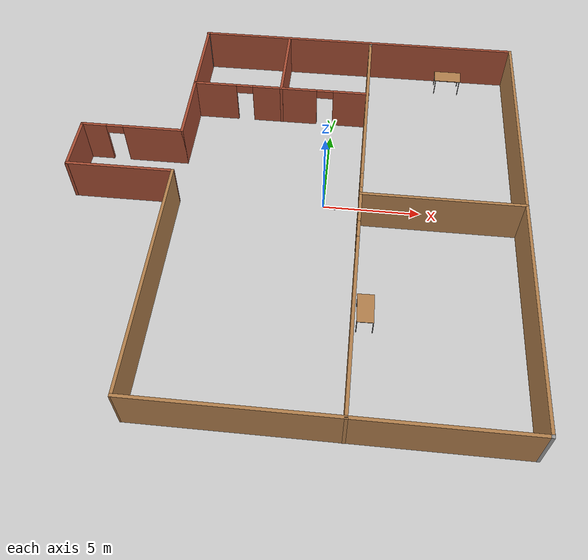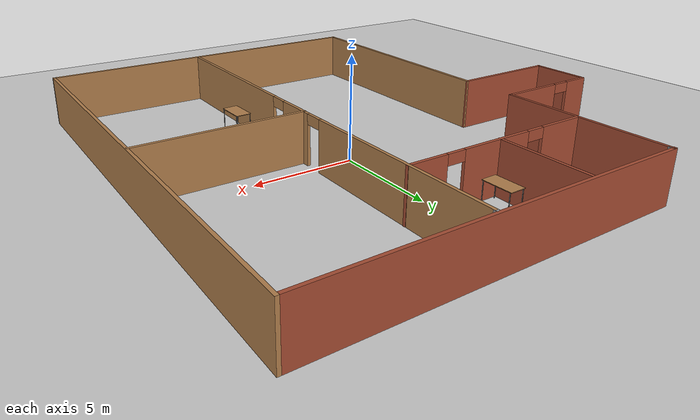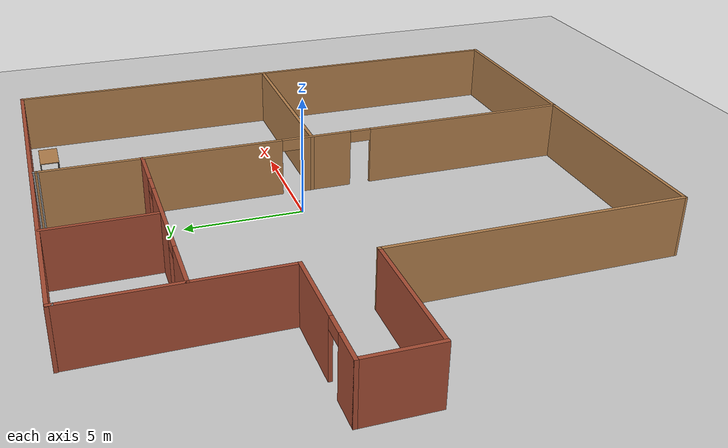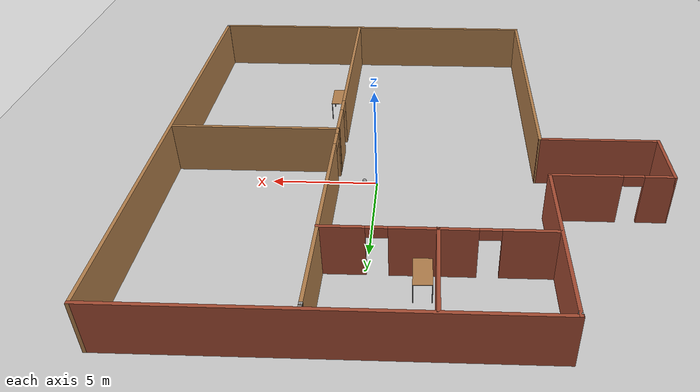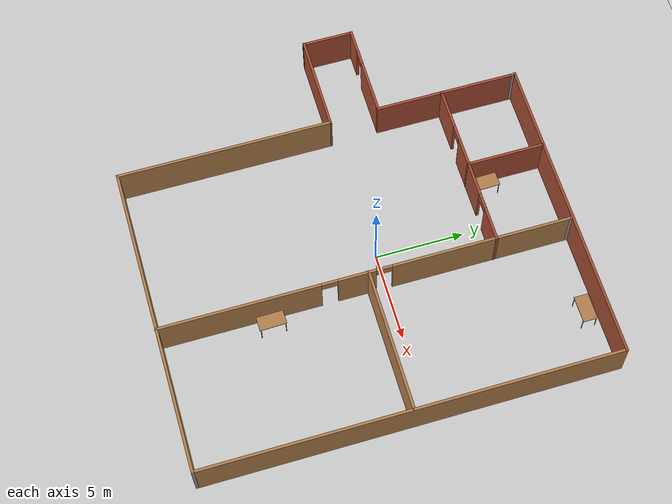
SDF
<sdf version="1.6">
 <world name="default">
  <model name="ground_plane">
   <static>1</static>
   <link name="link">
    <collision name="collision">
     <geometry><plane><normal>0 0 1</normal><size>100 100</size></plane></geometry>
     <surface><friction><ode><mu>100</mu><mu2>50</mu2></ode></friction></surface>
    </collision>
    <visual name="visual">
     <cast_shadows>0</cast_shadows>
     <geometry><plane><normal>0 0 1</normal><size>100 100</size></plane></geometry>
     <material>
      <script><uri>file://media/materials/scripts/gazebo.material</uri><name>Gazebo/Grey</name></script>
     </material>
    </visual>
   </link>
  </model>
  <model name="Building">
   <pose>-1.57707 -0.99469 0 0 -0 0</pose>
   <link name="Wall_0">
    <pose>-8.79073 3.4119 0 0 -0 0</pose>
    <visual name="Wall_0_Visual_0">
     <pose>-2.06075 0 1.25 0 -0 0</pose>
     <geometry><box><size>1.3785 0.15 2.5</size></box></geometry>
     <material>
      <script><uri>file://media/materials/scripts/gazebo.material</uri><name>Gazebo/Bricks</name></script>
      <ambient>1 1 1 1</ambient>
     </material>
     <meta><layer>0</layer></meta>
    </visual>
    <collision name="Wall_0_Collision_0">
     <geometry><box><size>1.3785 0.15 2.5</size></box></geometry>
     <pose>-2.06075 0 1.25 0 -0 0</pose>
    </collision>
    <visual name="Wall_0_Visual_1">
     <pose>1.13925 0 1.25 0 -0 0</pose>
     <geometry><box><size>3.2215 0.15 2.5</size></box></geometry>
     <material>
      <script><uri>file://media/materials/scripts/gazebo.material</uri><name>Gazebo/Bricks</name></script>
      <ambient>1 1 1 1</ambient>
     </material>
     <meta><layer>0</layer></meta>
    </visual>
    <collision name="Wall_0_Collision_1">
     <geometry><box><size>3.2215 0.15 2.5</size></box></geometry>
     <pose>1.13925 0 1.25 0 -0 0</pose>
    </collision>
    <visual name="Wall_0_Visual_2">
     <pose>-0.921499 0 2.25 0 -0 0</pose>
     <geometry><box><size>0.9 0.15 0.5</size></box></geometry>
     <material>
      <script><uri>file://media/materials/scripts/gazebo.material</uri><name>Gazebo/Bricks</name></script>
      <ambient>1 1 1 1</ambient>
     </material>
     <meta><layer>0</layer></meta>
    </visual>
    <collision name="Wall_0_Collision_2">
     <geometry><box><size>0.9 0.15 0.5</size></box></geometry>
     <pose>-0.921499 0 2.25 0 -0 0</pose>
    </collision>
   </link>
   <link name="Wall_1">
    <collision name="Wall_1_Collision">
     <geometry><box><size>8.232 0.15 2.5</size></box></geometry>
     <pose>0 0 1.25 0 -0 0</pose>
    </collision>
    <visual name="Wall_1_Visual">
     <pose>0 0 1.25 0 -0 0</pose>
     <geometry><box><size>8.232 0.15 2.5</size></box></geometry>
     <material>
      <script><uri>file://media/materials/scripts/gazebo.material</uri><name>Gazebo/Bricks</name></script>
      <ambient>1 1 1 1</ambient>
     </material>
     <meta><layer>0</layer></meta>
    </visual>
    <pose>-6.11573 7.4529 0 0 -0 1.5708</pose>
   </link>
   <link name="Wall_10">
    <collision name="Wall_10_Collision">
     <geometry><box><size>23 0.15 2.5</size></box></geometry>
     <pose>0 0 1.25 0 -0 0</pose>
    </collision>
    <visual name="Wall_10_Visual">
     <pose>0 0 1.25 0 -0 0</pose>
     <geometry><box><size>23 0.15 2.5</size></box></geometry>
     <material>
      <script><uri>file://media/materials/scripts/gazebo.material</uri><name>Gazebo/Wood</name></script>
      <ambient>0.996078 0.47451 0.0196078 1</ambient>
     </material>
     <meta><layer>0</layer></meta>
    </visual>
    <pose>11.4655 0.080949 0 0 0 -1.57078</pose>
   </link>
   <link name="Wall_14">
    <collision name="Wall_14_Collision">
     <geometry><box><size>17.629 0.15 2.5</size></box></geometry>
     <pose>0 0 1.25 0 -0 0</pose>
    </collision>
    <visual name="Wall_14_Visual">
     <pose>0 0 1.25 0 -0 0</pose>
     <geometry><box><size>17.629 0.15 2.5</size></box></geometry>
     <material>
      <script><uri>file://media/materials/scripts/gazebo.material</uri><name>Gazebo/Wood</name></script>
      <ambient>0.996078 0.47451 0.0196078 1</ambient>
     </material>
     <meta><layer>0</layer></meta>
    </visual>
    <pose>2.72077 -11.4971 0 0 -0 0</pose>
   </link>
   <link name="Wall_15">
    <collision name="Wall_15_Collision">
     <geometry><box><size>0.15 0.15 2.5</size></box></geometry>
     <pose>0 0 1.25 0 -0 0</pose>
    </collision>
    <visual name="Wall_15_Visual">
     <pose>0 0 1.25 0 -0 0</pose>
     <geometry><box><size>0.15 0.15 2.5</size></box></geometry>
     <material>
      <script><uri>file://media/materials/scripts/gazebo.material</uri><name>Gazebo/Grey</name></script>
      <ambient>1 1 1 1</ambient>
     </material>
     <meta><layer>0</layer></meta>
    </visual>
    <pose>11.4603 -11.4971 0 0 -0 0</pose>
   </link>
   <link name="Wall_18">
    <collision name="Wall_18_Collision">
     <geometry><box><size>12.25 0.15 2.5</size></box></geometry>
     <pose>0 0 1.25 0 -0 0</pose>
    </collision>
    <visual name="Wall_18_Visual">
     <pose>0 0 1.25 0 -0 0</pose>
     <geometry><box><size>12.25 0.15 2.5</size></box></geometry>
     <material>
      <script><uri>file://media/materials/scripts/gazebo.material</uri><name>Gazebo/Wood</name></script>
      <ambient>0.996078 0.47451 0.0196078 1</ambient>
     </material>
     <meta><layer>0</layer></meta>
    </visual>
    <pose>-6.02333 -5.4471 0 0 -0 1.57156</pose>
   </link>
   <link name="Wall_21">
    <collision name="Wall_21_Collision">
     <geometry><box><size>2.968 0.15 2.5</size></box></geometry>
     <pose>0 0 1.25 0 -0 0</pose>
    </collision>
    <visual name="Wall_21_Visual">
     <pose>0 0 1.25 0 -0 0</pose>
     <geometry><box><size>2.968 0.15 2.5</size></box></geometry>
     <material>
      <script><uri>file://media/materials/scripts/gazebo.material</uri><name>Gazebo/Bricks</name></script>
      <ambient>1 1 1 1</ambient>
     </material>
     <meta><layer>0</layer></meta>
    </visual>
    <pose>-11.4657 2.0029 0 0 0 -1.5708</pose>
   </link>
   <link name="Wall_25">
    <collision name="Wall_25_Collision">
     <geometry><box><size>5.5618 0.15 2.5</size></box></geometry>
     <pose>0 0 1.25 0 -0 0</pose>
    </collision>
    <visual name="Wall_25_Visual">
     <pose>0 0 1.25 0 -0 0</pose>
     <geometry><box><size>5.5618 0.15 2.5</size></box></geometry>
     <material>
      <script><uri>file://media/materials/scripts/gazebo.material</uri><name>Gazebo/Bricks</name></script>
      <ambient>1 1 1 1</ambient>
     </material>
     <meta><layer>0</layer></meta>
    </visual>
    <pose>-8.73383 0.602898 0 0 -0 3.14159</pose>
   </link>
   <link name="Wall_28">
    <pose>3.44626 -0.112102 0 0 -0 1.5708</pose>
    <visual name="Wall_28_Visual_0">
     <pose>-6.97297 0 1.25 0 -0 0</pose>
     <geometry><box><size>8.99175 0.15 2.5</size></box></geometry>
     <material>
      <script><uri>file://media/materials/scripts/gazebo.material</uri><name>Gazebo/Wood</name></script>
      <ambient>0.996078 0.47451 0.0196078 1</ambient>
     </material>
     <meta><layer>0</layer></meta>
    </visual>
    <collision name="Wall_28_Collision_0">
     <geometry><box><size>8.99175 0.15 2.5</size></box></geometry>
     <pose>-6.97297 0 1.25 0 -0 0</pose>
    </collision>
    <visual name="Wall_28_Visual_1">
     <pose>-0.516704 0 1.25 0 -0 0</pose>
     <geometry><box><size>2.12078 0.15 2.5</size></box></geometry>
     <material>
      <script><uri>file://media/materials/scripts/gazebo.material</uri><name>Gazebo/Wood</name></script>
      <ambient>0.996078 0.47451 0.0196078 1</ambient>
     </material>
     <meta><layer>0</layer></meta>
    </visual>
    <collision name="Wall_28_Collision_1">
     <geometry><box><size>2.12078 0.15 2.5</size></box></geometry>
     <pose>-0.516704 0 1.25 0 -0 0</pose>
    </collision>
    <visual name="Wall_28_Visual_2">
     <pose>6.45627 0 1.25 0 -0 0</pose>
     <geometry><box><size>10.0252 0.15 2.5</size></box></geometry>
     <material>
      <script><uri>file://media/materials/scripts/gazebo.material</uri><name>Gazebo/Wood</name></script>
      <ambient>0.996078 0.47451 0.0196078 1</ambient>
     </material>
     <meta><layer>0</layer></meta>
    </visual>
    <collision name="Wall_28_Collision_2">
     <geometry><box><size>10.0252 0.15 2.5</size></box></geometry>
     <pose>6.45627 0 1.25 0 -0 0</pose>
    </collision>
    <visual name="Wall_28_Visual_3">
     <pose>-2.02709 0 2.25 0 -0 0</pose>
     <geometry><box><size>0.9 0.15 0.5</size></box></geometry>
     <material>
      <script><uri>file://media/materials/scripts/gazebo.material</uri><name>Gazebo/Wood</name></script>
      <ambient>0.996078 0.47451 0.0196078 1</ambient>
     </material>
     <meta><layer>0</layer></meta>
    </visual>
    <collision name="Wall_28_Collision_3">
     <geometry><box><size>0.9 0.15 0.5</size></box></geometry>
     <pose>-2.02709 0 2.25 0 -0 0</pose>
    </collision>
    <visual name="Wall_28_Visual_4">
     <pose>0.993685 0 2.25 0 -0 0</pose>
     <geometry><box><size>0.9 0.15 0.5</size></box></geometry>
     <material>
      <script><uri>file://media/materials/scripts/gazebo.material</uri><name>Gazebo/Wood</name></script>
      <ambient>0.996078 0.47451 0.0196078 1</ambient>
     </material>
     <meta><layer>0</layer></meta>
    </visual>
    <collision name="Wall_28_Collision_4">
     <geometry><box><size>0.9 0.15 0.5</size></box></geometry>
     <pose>0.993685 0 2.25 0 -0 0</pose>
    </collision>
   </link>
   <link name="Wall_30">
    <collision name="Wall_30_Collision">
     <geometry><box><size>8.172 0.15 2.5</size></box></geometry>
     <pose>0 0 1.25 0 -0 0</pose>
    </collision>
    <visual name="Wall_30_Visual">
     <pose>0 0 1.25 0 -0 0</pose>
     <geometry><box><size>8.172 0.15 2.5</size></box></geometry>
     <material>
      <script><uri>file://media/materials/scripts/gazebo.material</uri><name>Gazebo/Wood</name></script>
      <ambient>0.996078 0.47451 0.0196078 1</ambient>
     </material>
     <meta><layer>0</layer></meta>
    </visual>
    <pose>7.44926 0.031898 0 0 -0 0</pose>
   </link>
   <link name="Wall_32">
    <pose>-1.32323 7.1579 0 0 -0 0</pose>
    <visual name="Wall_32_Visual_0">
     <pose>-3.66568 0 1.25 0 -0 0</pose>
     <geometry><box><size>2.38565 0.15 2.5</size></box></geometry>
     <material>
      <script><uri>file://media/materials/scripts/gazebo.material</uri><name>Gazebo/Bricks</name></script>
      <ambient>1 1 1 1</ambient>
     </material>
     <meta><layer>0</layer></meta>
    </visual>
    <collision name="Wall_32_Collision_0">
     <geometry><box><size>2.38565 0.15 2.5</size></box></geometry>
     <pose>-3.66568 0 1.25 0 -0 0</pose>
    </collision>
    <visual name="Wall_32_Visual_1">
     <pose>0.210013 0 1.25 0 -0 0</pose>
     <geometry><box><size>3.56573 0.15 2.5</size></box></geometry>
     <material>
      <script><uri>file://media/materials/scripts/gazebo.material</uri><name>Gazebo/Bricks</name></script>
      <ambient>1 1 1 1</ambient>
     </material>
     <meta><layer>0</layer></meta>
    </visual>
    <collision name="Wall_32_Collision_1">
     <geometry><box><size>3.56573 0.15 2.5</size></box></geometry>
     <pose>0.210013 0 1.25 0 -0 0</pose>
    </collision>
    <visual name="Wall_32_Visual_2">
     <pose>3.87569 0 1.25 0 -0 0</pose>
     <geometry><box><size>1.96562 0.15 2.5</size></box></geometry>
     <material>
      <script><uri>file://media/materials/scripts/gazebo.material</uri><name>Gazebo/Bricks</name></script>
      <ambient>1 1 1 1</ambient>
     </material>
     <meta><layer>0</layer></meta>
    </visual>
    <collision name="Wall_32_Collision_2">
     <geometry><box><size>1.96562 0.15 2.5</size></box></geometry>
     <pose>3.87569 0 1.25 0 -0 0</pose>
    </collision>
    <visual name="Wall_32_Visual_3">
     <pose>-2.02285 0 2.25 0 -0 0</pose>
     <geometry><box><size>0.9 0.15 0.5</size></box></geometry>
     <material>
      <script><uri>file://media/materials/scripts/gazebo.material</uri><name>Gazebo/Bricks</name></script>
      <ambient>1 1 1 1</ambient>
     </material>
     <meta><layer>0</layer></meta>
    </visual>
    <collision name="Wall_32_Collision_3">
     <geometry><box><size>0.9 0.15 0.5</size></box></geometry>
     <pose>-2.02285 0 2.25 0 -0 0</pose>
    </collision>
    <visual name="Wall_32_Visual_4">
     <pose>2.44288 0 2.25 0 -0 0</pose>
     <geometry><box><size>0.9 0.15 0.5</size></box></geometry>
     <material>
      <script><uri>file://media/materials/scripts/gazebo.material</uri><name>Gazebo/Bricks</name></script>
      <ambient>1 1 1 1</ambient>
     </material>
     <meta><layer>0</layer></meta>
    </visual>
    <collision name="Wall_32_Collision_4">
     <geometry><box><size>0.9 0.15 0.5</size></box></geometry>
     <pose>2.44288 0 2.25 0 -0 0</pose>
    </collision>
   </link>
   <link name="Wall_34">
    <collision name="Wall_34_Collision">
     <geometry><box><size>4.45 0.15 2.5</size></box></geometry>
     <pose>0 0 1.25 0 -0 0</pose>
    </collision>
    <visual name="Wall_34_Visual">
     <pose>0 0 1.25 0 -0 0</pose>
     <geometry><box><size>4.45 0.15 2.5</size></box></geometry>
     <material>
      <script><uri>file://media/materials/scripts/gazebo.material</uri><name>Gazebo/Bricks</name></script>
      <ambient>1 1 1 1</ambient>
     </material>
     <meta><layer>0</layer></meta>
    </visual>
    <pose>-1.30273 9.2939 0 0 0 -1.5708</pose>
   </link>
   <link name="Wall_38">
    <collision name="Wall_38_Collision">
     <geometry><box><size>0.25 0.15 2.5</size></box></geometry>
     <pose>0 0 1.25 0 -0 0</pose>
    </collision>
    <visual name="Wall_38_Visual">
     <pose>0 0 1.25 0 -0 0</pose>
     <geometry><box><size>0.25 0.15 2.5</size></box></geometry>
     <material>
      <script><uri>file://media/materials/scripts/gazebo.material</uri><name>Gazebo/Grey</name></script>
      <ambient>1 1 1 1</ambient>
     </material>
     <meta><layer>0</layer></meta>
    </visual>
    <pose>3.44649 11.3317 0 0 -0 1.56636</pose>
   </link>
   <link name="Wall_4">
    <collision name="Wall_4_Collision">
     <geometry><box><size>0.15 0.15 2.5</size></box></geometry>
     <pose>0 0 1.25 0 -0 0</pose>
    </collision>
    <visual name="Wall_4_Visual">
     <pose>0 0 1.25 0 -0 0</pose>
     <geometry><box><size>0.15 0.15 2.5</size></box></geometry>
     <material>
      <script><uri>file://media/materials/scripts/gazebo.material</uri><name>Gazebo/Grey</name></script>
      <ambient>1 1 1 1</ambient>
     </material>
     <meta><layer>0</layer></meta>
    </visual>
    <pose>-6.11559 11.362 0 0 -0 0</pose>
   </link>
   <link name="Wall_9">
    <collision name="Wall_9_Collision">
     <geometry><box><size>17.755 0.15 2.5</size></box></geometry>
     <pose>0 0 1.25 0 -0 0</pose>
    </collision>
    <visual name="Wall_9_Visual">
     <pose>0 0 1.25 0 -0 0</pose>
     <geometry><box><size>17.755 0.15 2.5</size></box></geometry>
     <material>
      <script><uri>file://media/materials/scripts/gazebo.material</uri><name>Gazebo/Bricks</name></script>
      <ambient>1 1 1 1</ambient>
     </material>
     <meta><layer>0</layer></meta>
    </visual>
    <pose>2.66276 11.5059 0 0 -0 0</pose>
   </link>
   <static>1</static>
  </model>
  <model name="table_0">
   <static>1</static>
   <link name="link">
    <collision name="surface">
     <pose>0 0 1 0 -0 0</pose>
     <geometry><box><size>1.5 0.8 0.03</size></box></geometry>
     <surface><friction><ode><mu>0.6</mu><mu2>0.6</mu2></ode></friction></surface>
    </collision>
    <visual name="visual1">
     <pose>0 0 1 0 -0 0</pose>
     <geometry><box><size>1.5 0.8 0.03</size></box></geometry>
     <material>
      <script><uri>file://media/materials/scripts/gazebo.material</uri><name>Gazebo/Wood</name></script>
     </material>
    </visual>
    <collision name="front_left_leg">
     <pose>0.68 0.38 0.5 0 -0 0</pose>
     <geometry><cylinder><radius>0.02</radius><length>1</length></cylinder></geometry>
    </collision>
    <visual name="front_left_leg">
     <pose>0.68 0.38 0.5 0 -0 0</pose>
     <geometry><cylinder><radius>0.02</radius><length>1</length></cylinder></geometry>
     <material>
      <script><uri>file://media/materials/scripts/gazebo.material</uri><name>Gazebo/Grey</name></script>
     </material>
    </visual>
    <collision name="front_right_leg">
     <pose>0.68 -0.38 0.5 0 -0 0</pose>
     <geometry><cylinder><radius>0.02</radius><length>1</length></cylinder></geometry>
    </collision>
    <visual name="front_right_leg">
     <pose>0.68 -0.38 0.5 0 -0 0</pose>
     <geometry><cylinder><radius>0.02</radius><length>1</length></cylinder></geometry>
     <material>
      <script><uri>file://media/materials/scripts/gazebo.material</uri><name>Gazebo/Grey</name></script>
     </material>
    </visual>
    <collision name="back_right_leg">
     <pose>-0.68 -0.38 0.5 0 -0 0</pose>
     <geometry><cylinder><radius>0.02</radius><length>1</length></cylinder></geometry>
    </collision>
    <visual name="back_right_leg">
     <pose>-0.68 -0.38 0.5 0 -0 0</pose>
     <geometry><cylinder><radius>0.02</radius><length>1</length></cylinder></geometry>
     <material>
      <script><uri>file://media/materials/scripts/gazebo.material</uri><name>Gazebo/Grey</name></script>
     </material>
    </visual>
    <collision name="back_left_leg">
     <pose>-0.68 0.38 0.5 0 -0 0</pose>
     <geometry><cylinder><radius>0.02</radius><length>1</length></cylinder></geometry>
    </collision>
    <visual name="back_left_leg">
     <pose>-0.68 0.38 0.5 0 -0 0</pose>
     <geometry><cylinder><radius>0.02</radius><length>1</length></cylinder></geometry>
     <material>
      <script><uri>file://media/materials/scripts/gazebo.material</uri><name>Gazebo/Grey</name></script>
     </material>
    </visual>
   </link>
   <pose>6.50755 9.71927 0 0 -0 0</pose>
  </model>
  <model name="table_1">
   <static>1</static>
   <link name="link">
    <collision name="surface">
     <pose>0 0 1 0 -0 0</pose>
     <geometry><box><size>1.5 0.8 0.03</size></box></geometry>
     <surface><friction><ode><mu>0.6</mu><mu2>0.6</mu2></ode></friction></surface>
    </collision>
    <visual name="visual1">
     <pose>0 0 1 0 -0 0</pose>
     <geometry><box><size>1.5 0.8 0.03</size></box></geometry>
     <material>
      <script><uri>file://media/materials/scripts/gazebo.material</uri><name>Gazebo/Wood</name></script>
     </material>
    </visual>
    <collision name="front_left_leg">
     <pose>0.68 0.38 0.5 0 -0 0</pose>
     <geometry><cylinder><radius>0.02</radius><length>1</length></cylinder></geometry>
    </collision>
    <visual name="front_left_leg">
     <pose>0.68 0.38 0.5 0 -0 0</pose>
     <geometry><cylinder><radius>0.02</radius><length>1</length></cylinder></geometry>
     <material>
      <script><uri>file://media/materials/scripts/gazebo.material</uri><name>Gazebo/Grey</name></script>
     </material>
    </visual>
    <collision name="front_right_leg">
     <pose>0.68 -0.38 0.5 0 -0 0</pose>
     <geometry><cylinder><radius>0.02</radius><length>1</length></cylinder></geometry>
    </collision>
    <visual name="front_right_leg">
     <pose>0.68 -0.38 0.5 0 -0 0</pose>
     <geometry><cylinder><radius>0.02</radius><length>1</length></cylinder></geometry>
     <material>
      <script><uri>file://media/materials/scripts/gazebo.material</uri><name>Gazebo/Grey</name></script>
     </material>
    </visual>
    <collision name="back_right_leg">
     <pose>-0.68 -0.38 0.5 0 -0 0</pose>
     <geometry><cylinder><radius>0.02</radius><length>1</length></cylinder></geometry>
    </collision>
    <visual name="back_right_leg">
     <pose>-0.68 -0.38 0.5 0 -0 0</pose>
     <geometry><cylinder><radius>0.02</radius><length>1</length></cylinder></geometry>
     <material>
      <script><uri>file://media/materials/scripts/gazebo.material</uri><name>Gazebo/Grey</name></script>
     </material>
    </visual>
    <collision name="back_left_leg">
     <pose>-0.68 0.38 0.5 0 -0 0</pose>
     <geometry><cylinder><radius>0.02</radius><length>1</length></cylinder></geometry>
    </collision>
    <visual name="back_left_leg">
     <pose>-0.68 0.38 0.5 0 -0 0</pose>
     <geometry><cylinder><radius>0.02</radius><length>1</length></cylinder></geometry>
     <material>
      <script><uri>file://media/materials/scripts/gazebo.material</uri><name>Gazebo/Grey</name></script>
     </material>
    </visual>
   </link>
   <pose>-2.29975 7.02171 0 0 -0 1.5908</pose>
  </model>
  <model name="table_3">
   <static>1</static>
   <link name="link">
    <collision name="surface">
     <pose>0 0 1 0 -0 0</pose>
     <geometry><box><size>1.5 0.8 0.03</size></box></geometry>
     <surface><friction><ode><mu>0.6</mu><mu2>0.6</mu2></ode></friction></surface>
    </collision>
    <visual name="visual1">
     <pose>0 0 1 0 -0 0</pose>
     <geometry><box><size>1.5 0.8 0.03</size></box></geometry>
     <material>
      <script><uri>file://media/materials/scripts/gazebo.material</uri><name>Gazebo/Wood</name></script>
     </material>
    </visual>
    <collision name="front_left_leg">
     <pose>0.68 0.38 0.5 0 -0 0</pose>
     <geometry><cylinder><radius>0.02</radius><length>1</length></cylinder></geometry>
    </collision>
    <visual name="front_left_leg">
     <pose>0.68 0.38 0.5 0 -0 0</pose>
     <geometry><cylinder><radius>0.02</radius><length>1</length></cylinder></geometry>
     <material>
      <script><uri>file://media/materials/scripts/gazebo.material</uri><name>Gazebo/Grey</name></script>
     </material>
    </visual>
    <collision name="front_right_leg">
     <pose>0.68 -0.38 0.5 0 -0 0</pose>
     <geometry><cylinder><radius>0.02</radius><length>1</length></cylinder></geometry>
    </collision>
    <visual name="front_right_leg">
     <pose>0.68 -0.38 0.5 0 -0 0</pose>
     <geometry><cylinder><radius>0.02</radius><length>1</length></cylinder></geometry>
     <material>
      <script><uri>file://media/materials/scripts/gazebo.material</uri><name>Gazebo/Grey</name></script>
     </material>
    </visual>
    <collision name="back_right_leg">
     <pose>-0.68 -0.38 0.5 0 -0 0</pose>
     <geometry><cylinder><radius>0.02</radius><length>1</length></cylinder></geometry>
    </collision>
    <visual name="back_right_leg">
     <pose>-0.68 -0.38 0.5 0 -0 0</pose>
     <geometry><cylinder><radius>0.02</radius><length>1</length></cylinder></geometry>
     <material>
      <script><uri>file://media/materials/scripts/gazebo.material</uri><name>Gazebo/Grey</name></script>
     </material>
    </visual>
    <collision name="back_left_leg">
     <pose>-0.68 0.38 0.5 0 -0 0</pose>
     <geometry><cylinder><radius>0.02</radius><length>1</length></cylinder></geometry>
    </collision>
    <visual name="back_left_leg">
     <pose>-0.68 0.38 0.5 0 -0 0</pose>
     <geometry><cylinder><radius>0.02</radius><length>1</length></cylinder></geometry>
     <material>
      <script><uri>file://media/materials/scripts/gazebo.material</uri><name>Gazebo/Grey</name></script>
     </material>
    </visual>
   </link>
   <pose>2.45233 -6.54141 0 0 0 -1.54802</pose>
  </model>
  <model name="my_ball">
   <link name="link_0">
    <inertial>
     <mass>1</mass>
     <inertia><ixx>0.1</ixx><ixy>0</ixy><ixz>0</ixz><iyy>0.1</iyy><iyz>0</iyz><izz>0.1</izz></inertia>
    </inertial>
    <visual name="visual">
     <geometry><sphere><radius>0.1</radius></sphere></geometry>
     <material>
      <lighting>1</lighting>
      <script><uri>file://media/materials/scripts/gazebo.material</uri><name>Gazebo/Grey</name></script>
      <shader type="pixel"><normal_map>__default__</normal_map></shader>
      <ambient>1 1 1 1</ambient>
      <diffuse>1 1 1 1</diffuse>
      <specular>1 1 1 1</specular>
      <emissive>1 1 1 1</emissive>
     </material>
    </visual>
    <collision name="collision">
     <geometry><sphere><radius>0.1</radius></sphere></geometry>
     <surface>
      <friction>
       <ode><mu>1</mu><mu2>1</mu2><fdir1>0 0 0</fdir1><slip1>0</slip1><slip2>0</slip2></ode>
       <torsional>
        <coefficient>1</coefficient>
        <patch_radius>0</patch_radius>
        <surface_radius>0</surface_radius>
        <use_patch_radius>1</use_patch_radius>
        <ode><slip>0</slip></ode>
       </torsional>
      </friction>
      <bounce><restitution_coefficient>0</restitution_coefficient><threshold>1e+06</threshold></bounce>
      <contact>
       <collide_without_contact>0</collide_without_contact>
       <collide_without_contact_bitmask>1</collide_without_contact_bitmask>
       <collide_bitmask>1</collide_bitmask>
       <ode>
        <soft_cfm>0</soft_cfm>
        <soft_erp>0.2</soft_erp>
        <kp>1e+13</kp>
        <kd>1</kd>
        <max_vel>0.01</max_vel>
        <min_depth>0</min_depth>
       </ode>
       <bullet>
        <split_impulse>1</split_impulse>
        <split_impulse_penetration_threshold>-0.01</split_impulse_penetration_threshold>
        <soft_cfm>0</soft_cfm>
        <soft_erp>0.2</soft_erp>
        <kp>1e+13</kp>
        <kd>1</kd>
       </bullet>
      </contact>
     </surface>
    </collision>
   </link>
   <static>0</static>
   <pose>0.608717 -0.084422 0.1 0 -0 0</pose>
  </model>
 </world>
</sdf>
